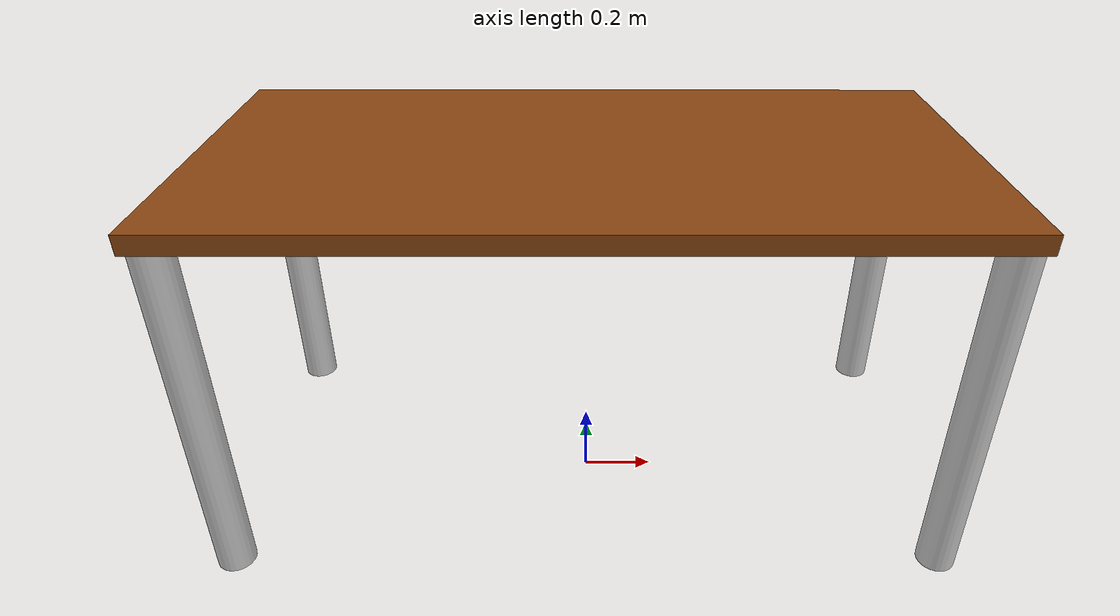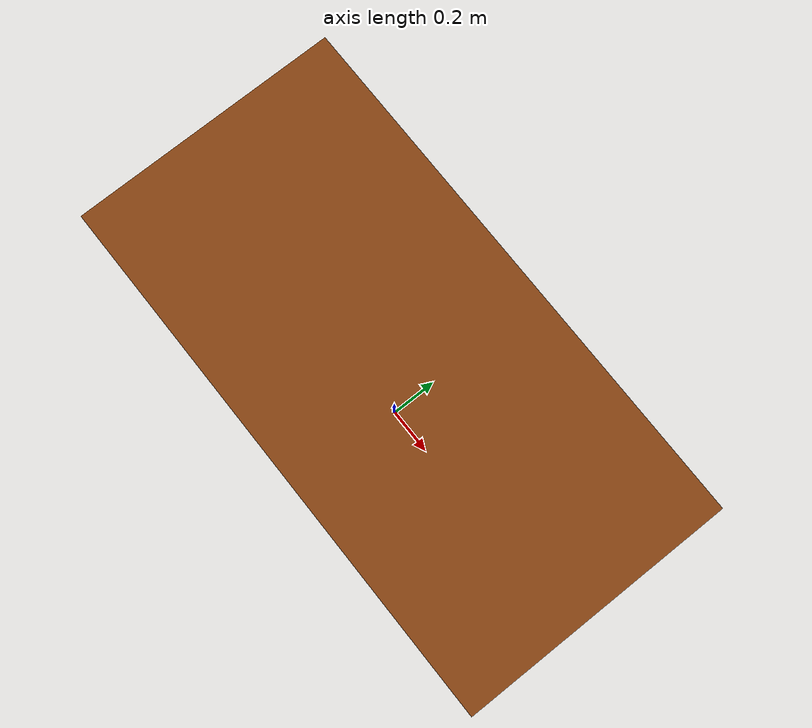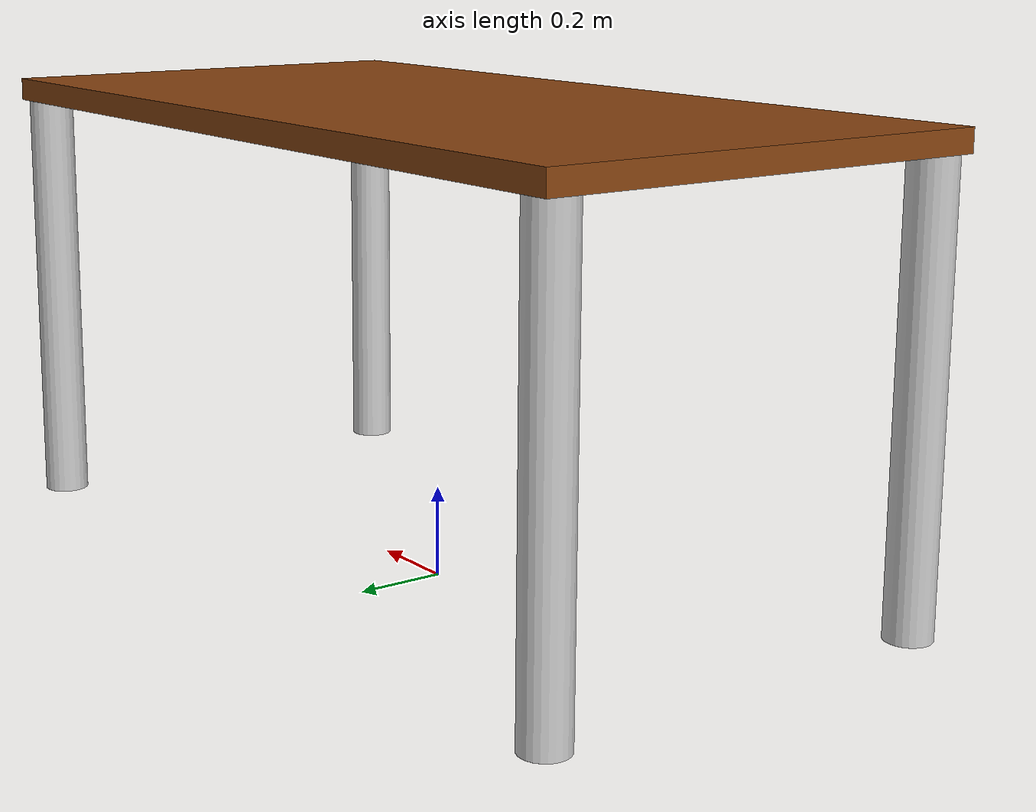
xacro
<?xml version="1.0" encoding="UTF-8"?>
<robot xmlns:xacro="http://wiki.ros.org/xacro" name="table">

  <xacro:arg name="prefix" default="" />

  <xacro:include filename="$(find table_description)/urdf/table/table_macro.xacro"/>
  <xacro:include filename="$(find table_description)/urdf/common/inertials.xacro" />
  <xacro:include filename="$(find table_description)/urdf/common/materials.xacro" />

  <!-- create link fixed to the "world" -->
  <link name="world" />

  <!-- run table macro with parameters -->
  <xacro:table prefix="$(arg prefix)" parent="world" >
    <origin xyz="0 0 0" rpy="0 0 0" />   <!-- position robot in the world -->
  </xacro:table>

</robot>

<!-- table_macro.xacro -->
<robot xmlns:xacro="http://www.ros.org/wiki/xacro">

  <!-- Macro for creating a leg -->
  <xacro:macro name="leg" params="name">
    <link name="${name}">
      <visual>
        <origin xyz="0 0 ${-leg_length/2}" rpy="0 0 0" />
        <geometry>
          <cylinder length="${leg_length}" radius="${leg_radius}" />
        </geometry>
        <material name="light_grey" />
      </visual>
      <collision>
        <origin xyz="0 0 ${-leg_length/2}" rpy="0 0 0" />
        <geometry>
          <cylinder length="${leg_length}" radius="${leg_radius}" />
        </geometry>
      </collision>

      <xacro:cylinder_inertial radius="${leg_radius}" length="${leg_length}" mass="${leg_mass}">
        <origin xyz="0 0 ${-leg_length/2}" rpy="0 0 0" />
      </xacro:cylinder_inertial>
    </link>
  </xacro:macro>

  <xacro:macro name="table" params="parent prefix  *origin">

    <!-- Constants for Table and Legs -->
    <xacro:property name="table_length" value="2" />
    <xacro:property name="table_width" value="1" />
    <xacro:property name="table_height" value="1" />
    <xacro:property name="table_thickness" value="0.05" />
    <xacro:property name="wood_density" value="800" />
    <xacro:property name="table_mass" value="${table_length * table_width * table_thickness * wood_density}" />
    <xacro:property name="leg_length" value="${table_height - table_thickness}" />
    <xacro:property name="leg_radius" value="0.05" />
    <xacro:property name="aluminum_density" value="2700" />
    <xacro:property name="leg_mass" value="${pi*leg_radius*leg_radius*leg_length*aluminum_density}" />

    <!-- create four legs -->
    <xacro:leg name="${prefix}leg1" />
    <xacro:leg name="${prefix}leg2" />
    <xacro:leg name="${prefix}leg3" />
    <xacro:leg name="${prefix}leg4" />

    <!-- Attach the legs to the table_top using fixed joints -->
    <joint name="${prefix}leg1_joint" type="fixed">
      <parent link="table_top" />
      <child link="leg1" />
      <origin xyz="${table_length/2 - leg_radius} ${table_width/2 - leg_radius} ${-table_thickness}" rpy="0 0 0" />
    </joint>

    <joint name="${prefix}leg2_joint" type="fixed">
      <parent link="table_top" />
      <child link="leg2" />
      <origin xyz="${-table_length/2 + leg_radius} ${table_width/2 - leg_radius} ${-table_thickness}" rpy="0 0 0" />
    </joint>

    <joint name="${prefix}leg3_joint" type="fixed">
      <parent link="table_top" />
      <child link="leg3" />
      <origin xyz="${-table_length/2 + leg_radius} ${-table_width/2 + leg_radius} ${-table_thickness}" rpy="0 0 0" />
    </joint>

    <joint name="${prefix}leg4_joint" type="fixed">
      <parent link="table_top" />
      <child link="leg4" />
      <origin xyz="${table_length/2 - leg_radius} ${-table_width/2 + leg_radius} ${-table_thickness}" rpy="0 0 0" />
    </joint>

    <!-- Table top joint -->
    <joint name="${prefix}table_top_joint" type="fixed">
      <parent link="${parent}" />
      <child link="table_top" />
      <origin xyz="0 0 ${table_height + table_thickness}" rpy="0 0 0" />
    </joint>

  <!-- Base Link, Table Top -->
    <link name="${prefix}table_top">
      <collision>
        <origin xyz="0 0 ${-table_thickness/2}" rpy="0 0 0" />
        <geometry>
          <box size="${table_length} ${table_width} ${table_thickness}" />
        </geometry>
      </collision>

      <visual>
        <origin xyz="0 0 ${-table_thickness/2}" rpy="0 0 0" />
        <geometry>
          <box size="${table_length} ${table_width} ${table_thickness}" />
        </geometry>
        <material name="brown" />
      </visual>

      <xacro:box_inertial x="${table_width}" y="${table_length}" z="${table_thickness}" mass="${table_mass}">
        <origin xyz="0 0 ${table_thickness / 2}" rpy="0 0 0" />
      </xacro:box_inertial>
    </link>

  </xacro:macro>

</robot>

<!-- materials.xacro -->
<robot>
  <material name="black">
    <color rgba="0.0 0.0 0.0 1.0"/>
  </material>

  <material name="blue">
    <color rgba="0.0 0.0 0.8 1.0"/>
  </material>

  <material name="green">
    <color rgba="0.0 1.0 0.0 1.0"/>
  </material>

  <material name="dark_grey">
    <color rgba="0.2 0.2 0.2 1.0"/>
  </material>

  <material name="grey">
    <color rgba="0.5 0.5 0.5 1.0"/>
  </material>

  <material name="light_grey">
    <color rgba="0.8 0.8 0.8 1.0"/>
  </material>

  <material name="orange">
    <color rgba="${255/255} ${108/255} ${10/255} 1.0"/>
  </material>

<material name="brown">
    <color rgba="0.54 0.27 0.07 1.0"/>
</material>

  <material name="red">
    <color rgba="0.8 0.0 0.0 1.0"/>
  </material>

  <material name="white">
    <color rgba="1.0 1.0 1.0 1.0"/>
  </material>

</robot>
